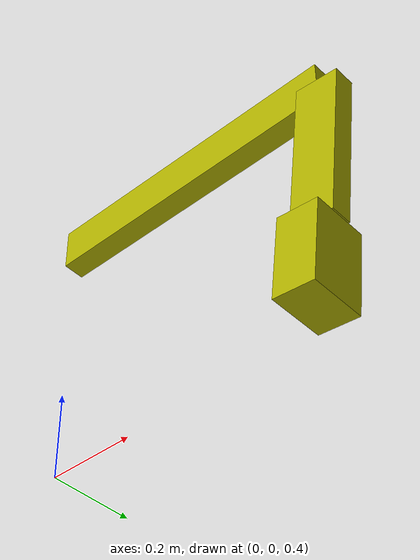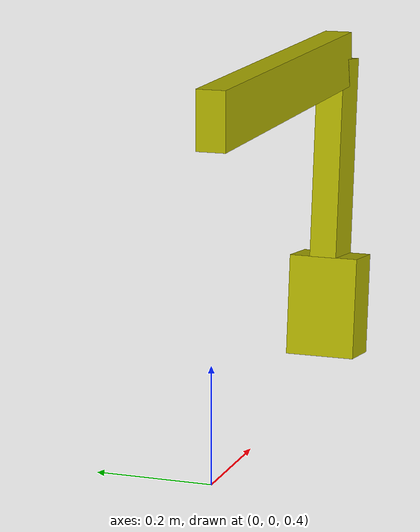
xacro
<?xml version="1.0"?>
<robot xmlns:xacro="http://www.ros.org/wiki/xacro" name="ex_model">

  <xacro:property name="Z0" value="1.0"/>
  <xacro:property name="L1" value="0.7125"/>
  <xacro:property name="L2" value="0.3656"/>
  <xacro:property name="L3" value="0.1858"/>
  <xacro:property name="theta1_max" value="1.1647"/>
  <xacro:property name="theta1_min" value="-0.7689"/>
  <xacro:property name="theta2_max" value="2.7581"/>
  <xacro:property name="theta2_min" value="0.6059"/>
  <xacro:property name="theta3_max" value="2.4674"/>
  <xacro:property name="theta3_min" value="-0.6128"/>

  <link name="world"/>

  <joint name="world_joint" type="fixed">
    <parent link="world"/>
    <child link="base_link"/>
  </joint>

  <link name="base_link">
    <inertial>
      <origin xyz="0 0 0" rpy="0 0 0" />
      <mass value="1.0" />
      <inertia ixx="1.0" ixy="0.0" ixz="0.0"
                         iyy="1.0" iyz="0.0"
                                   izz="1.0" />
    </inertial>
  </link>
  <gazebo reference="base_link">
    <material>Gazebo/Yellow</material>
  </gazebo>

  <joint name="boom_foot_pin" type="revolute">
    <parent link="base_link"/>
    <child link="boom"/>
    <origin xyz="0 0 ${Z0}" rpy="0 0 0"/>
    <axis xyz="0 1 0"/>
    <limit lower="${theta1_min}" upper="${theta1_max}" effort="10" velocity="10"/>
  </joint>
  <transmission name="trans_boom_foot_pin">
    <type>transmission_interface/SimpleTransmission</type>
    <joint name="boom_foot_pin">
      <hardwareInterface>VelocityJointInterface</hardwareInterface>
    </joint>
    <actuator name="act_boom_foot_pin">
      <hardwareInterface>VelocityJointInterface</hardwareInterface>
      <mechanismReduction>1</mechanismReduction>
    </actuator>
  </transmission>

  <link name="boom">
    <visual>
    <origin xyz="${L1/2.} 0 0" rpy="0 0 0"/>
      <geometry>
        <box size="${L1} 0.05 0.1"/>
      </geometry>
      <material name="yellow">
        <color rgba="0.7 0.7 0 1"/>
      </material>
    </visual>
    <inertial>
      <origin xyz="${L1/2.} 0 0" rpy="0 0 0" />
      <mass value="0.03" />
      <inertia ixx="1.0" ixy="0.0" ixz="0.0"
                         iyy="1.0" iyz="0.0"
                                   izz="1.0" />
    </inertial>
  </link>
  <gazebo reference="boom">
    <material>Gazebo/Yellow</material>
  </gazebo>

  <joint name="boom_top_pin" type="revolute">
    <parent link="boom"/>
    <child link="arm"/>
    <origin xyz="${L1} 0 0" rpy="0 0 0"/>
    <axis xyz="0 1 0"/>
    <limit lower="${theta2_min}" upper="${theta2_max}" effort="10" velocity="10"/>
  </joint>
  <transmission name="trans_boom_top_pin">
    <type>transmission_interface/SimpleTransmission</type>
    <joint name="boom_top_pin">
      <hardwareInterface>VelocityJointInterface</hardwareInterface>
    </joint>
    <actuator name="act_boom_top_pin">
      <hardwareInterface>VelocityJointInterface</hardwareInterface>
      <mechanismReduction>1</mechanismReduction>
    </actuator>
  </transmission>

  <link name="arm">
    <visual>
      <origin xyz="${L2/2} 0 0" rpy="0 0 0"/>
      <geometry>
        <box size="${L2} 0.05 0.1"/>
      </geometry>
      <material name="yellow"/>
    </visual>
    <inertial>
      <origin xyz="${L2/2} 0 0" rpy="0 0 0" />
      <mass value="0.03" />
      <inertia ixx="1.0" ixy="0.0" ixz="0.0"
                         iyy="1.0" iyz="0.0"
                                   izz="1.0" />
    </inertial>
  </link>
  <gazebo reference="arm">
    <material>Gazebo/Yellow</material>
  </gazebo>

  <joint name="arm_top_pin" type="revolute">
    <parent link="arm"/>
    <child link="bucket"/>
    <origin xyz="${L2} 0 0" rpy="0 0 0"/>
    <axis xyz="0 1 0"/>
    <limit lower="${theta3_min}" upper="${theta3_max}" effort="10" velocity="10"/>
  </joint>
  <transmission name="trans_arm_top_pin">
    <type>transmission_interface/SimpleTransmission</type>
    <joint name="arm_top_pin">
      <hardwareInterface>VelocityJointInterface</hardwareInterface>
    </joint>
    <actuator name="act_arm_top_pin">
      <hardwareInterface>VelocityJointInterface</hardwareInterface>
      <mechanismReduction>1</mechanismReduction>
    </actuator>
  </transmission>

  <link name="bucket">
    <visual>
      <origin xyz="${L3/2} 0 0" rpy="0 0 0"/>
      <geometry>
        <box size="${L3} ${1.027/8.0} ${0.75/8.0}"/>
      </geometry>
      <material name="yellow"/>
    </visual>
    <inertial>
      <origin xyz="${L3/2} 0 0" rpy="0 0 0" />
      <mass value="0.03" />
      <inertia ixx="1.0" ixy="0.0" ixz="0.0"
                         iyy="1.0" iyz="0.0"
                                   izz="1.0" />
    </inertial>
  </link>
  <gazebo reference="bucket">
    <material>Gazebo/Yellow</material>
  </gazebo>

  <gazebo>
    <plugin name="gazebo_ros_control" filename="libgazebo_ros_control.so">
      <robotNamespace>/ex_model</robotNamespace>
    </plugin>
  </gazebo>

</robot>
